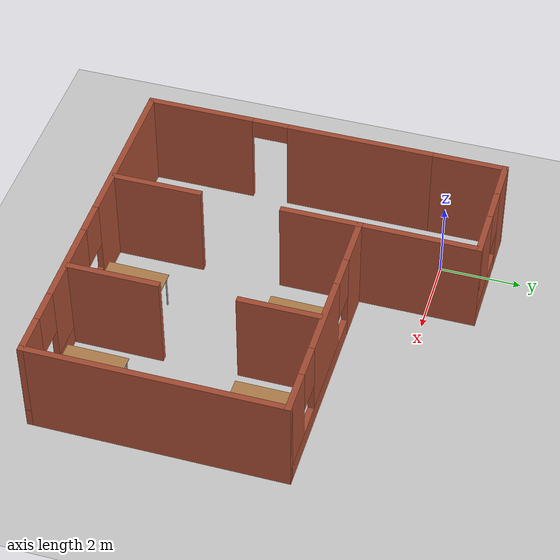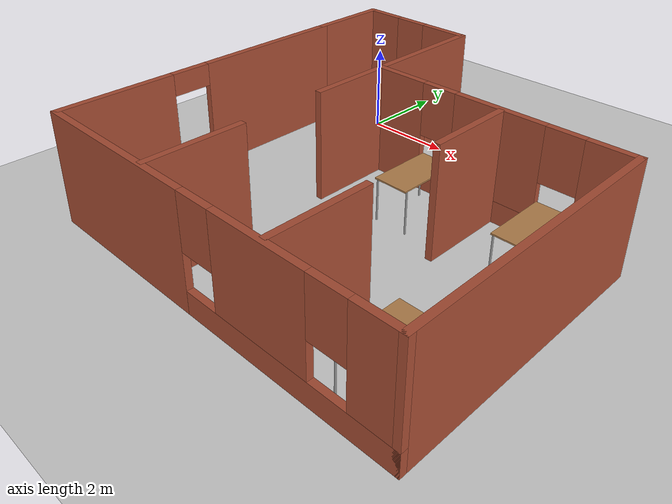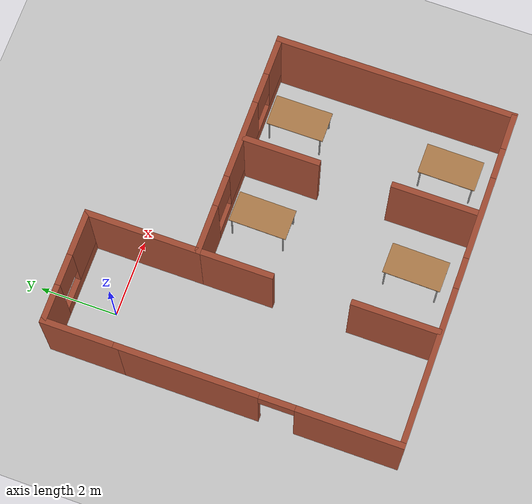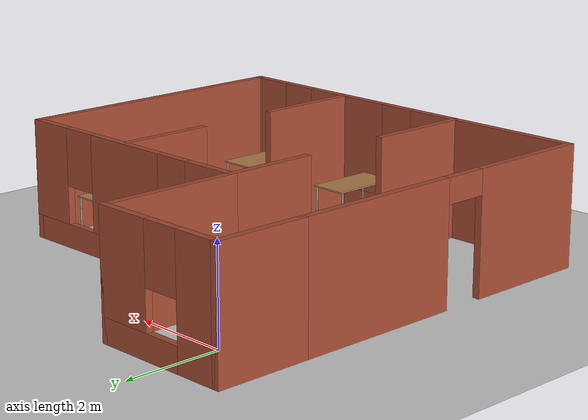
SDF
<sdf version="1.7">
 <world name="default">
  <light name="sun" type="directional">
   <pose>0 0 10 0 -0 0</pose>
   <diffuse>0.8 0.8 0.8 1</diffuse>
   <specular>0.2 0.2 0.2 1</specular>
   <attenuation>
    <range>1000</range>
    <constant>0.9</constant>
    <linear>0.01</linear>
    <quadratic>0.001</quadratic>
   </attenuation>
   <direction>-0.5 0.1 -0.9</direction>
   <spot><inner_angle>0</inner_angle><outer_angle>0</outer_angle><falloff>0</falloff></spot>
  </light>
  <model name="ground_plane">
   <static>1</static>
   <link name="link">
    <collision name="collision">
     <geometry><plane><normal>0 0 1</normal><size>100 100</size></plane></geometry>
     <surface>
      <contact><collide_bitmask>65535</collide_bitmask></contact>
      <friction><ode><mu>100</mu><mu2>50</mu2></ode></friction>
     </surface>
    </collision>
    <visual name="visual">
     <cast_shadows>0</cast_shadows>
     <geometry><plane><normal>0 0 1</normal><size>100 100</size></plane></geometry>
     <material>
      <script><uri>file://media/materials/scripts/gazebo.material</uri><name>Gazebo/Grey</name></script>
     </material>
    </visual>
   </link>
  </model>
  <gravity>0 0 -9.8</gravity>
  <magnetic_field>6e-06 2.3e-05 -4.2e-05</magnetic_field>
  <atmosphere type="adiabatic"/>
  <physics type="ode">
   <max_step_size>0.001</max_step_size>
   <real_time_factor>1</real_time_factor>
   <real_time_update_rate>1000</real_time_update_rate>
  </physics>
  <scene><ambient>0.4 0.4 0.4 1</ambient><background>0.7 0.7 0.7 1</background><shadows>1</shadows></scene>
  <spherical_coordinates>
   <surface_model>EARTH_WGS84</surface_model>
   <latitude_deg>0</latitude_deg>
   <longitude_deg>0</longitude_deg>
   <elevation>0</elevation>
   <heading_deg>0</heading_deg>
  </spherical_coordinates>
  <model name="Restaurant">
   <pose>3.05077 -3.33118 0 0 -0 0</pose>
   <link name="Wall_1">
    <collision name="Wall_1_Collision">
     <geometry><box><size>2 0.15 2.5</size></box></geometry>
     <pose>0 0 1.25 0 -0 0</pose>
    </collision>
    <visual name="Wall_1_Visual">
     <pose>0 0 1.25 0 -0 0</pose>
     <geometry><box><size>2 0.15 2.5</size></box></geometry>
     <material>
      <script><uri>file://media/materials/scripts/gazebo.material</uri><name>Gazebo/Bricks</name></script>
      <ambient>1 1 1 1</ambient>
     </material>
     <meta><layer>0</layer></meta>
    </visual>
    <pose>-4.35 3.55 0 0 -0 1.5708</pose>
   </link>
   <link name="Wall_11">
    <collision name="Wall_11_Collision">
     <geometry><box><size>2 0.15 2.5</size></box></geometry>
     <pose>0 0 1.25 0 -0 0</pose>
    </collision>
    <visual name="Wall_11_Visual">
     <pose>0 0 1.25 0 -0 0</pose>
     <geometry><box><size>2 0.15 2.5</size></box></geometry>
     <material>
      <script><uri>file://media/materials/scripts/gazebo.material</uri><name>Gazebo/Bricks</name></script>
      <ambient>1 1 1 1</ambient>
     </material>
     <meta><layer>0</layer></meta>
    </visual>
    <pose>-1.5 0.7 0 0 -0 -1.5708</pose>
   </link>
   <link name="Wall_13">
    <collision name="Wall_13_Collision">
     <geometry><box><size>2 0.15 2.5</size></box></geometry>
     <pose>0 0 1.25 0 -0 0</pose>
    </collision>
    <visual name="Wall_13_Visual">
     <pose>0 0 1.25 0 -0 0</pose>
     <geometry><box><size>2 0.15 2.5</size></box></geometry>
     <material>
      <script><uri>file://media/materials/scripts/gazebo.material</uri><name>Gazebo/Bricks</name></script>
      <ambient>1 1 1 1</ambient>
     </material>
     <meta><layer>0</layer></meta>
    </visual>
    <pose>1.58788 0.599548 0 0 -0 -1.5708</pose>
   </link>
   <link name="Wall_15">
    <collision name="Wall_15_Collision">
     <geometry><box><size>2.25 0.15 2.5</size></box></geometry>
     <pose>0 0 1.25 0 -0 0</pose>
    </collision>
    <visual name="Wall_15_Visual">
     <pose>0 0 1.25 0 -0 0</pose>
     <geometry><box><size>2.25 0.15 2.5</size></box></geometry>
     <material>
      <script><uri>file://media/materials/scripts/gazebo.material</uri><name>Gazebo/Bricks</name></script>
      <ambient>1 1 1 1</ambient>
     </material>
     <meta><layer>0</layer></meta>
    </visual>
    <pose>-1.47267 -3.35994 0 0 -0 -1.5708</pose>
   </link>
   <link name="Wall_17">
    <collision name="Wall_17_Collision">
     <geometry><box><size>2.25 0.15 2.5</size></box></geometry>
     <pose>0 0 1.25 0 -0 0</pose>
    </collision>
    <visual name="Wall_17_Visual">
     <pose>0 0 1.25 0 -0 0</pose>
     <geometry><box><size>2.25 0.15 2.5</size></box></geometry>
     <material>
      <script><uri>file://media/materials/scripts/gazebo.material</uri><name>Gazebo/Bricks</name></script>
      <ambient>1 1 1 1</ambient>
     </material>
     <meta><layer>0</layer></meta>
    </visual>
    <pose>1.65824 -3.32476 0 0 -0 -1.5708</pose>
   </link>
   <link name="Wall_2">
    <pose>-2.925 4.475 0 0 -0 0</pose>
    <visual name="Wall_2_Visual_0">
     <pose>-0.997768 0 1.25 0 -0 0</pose>
     <geometry><box><size>1.00446 0.15 2.5</size></box></geometry>
     <material>
      <script><uri>file://media/materials/scripts/gazebo.material</uri><name>Gazebo/Bricks</name></script>
      <ambient>1 1 1 1</ambient>
     </material>
     <meta><layer>0</layer></meta>
    </visual>
    <collision name="Wall_2_Collision_0">
     <geometry><box><size>1.00446 0.15 2.5</size></box></geometry>
     <pose>-0.997768 0 1.25 0 -0 0</pose>
    </collision>
    <visual name="Wall_2_Visual_1">
     <pose>0.502232 0 0.25 0 -0 0</pose>
     <geometry><box><size>1.99554 0.15 0.5</size></box></geometry>
     <material>
      <script><uri>file://media/materials/scripts/gazebo.material</uri><name>Gazebo/Bricks</name></script>
      <ambient>1 1 1 1</ambient>
     </material>
     <meta><layer>0</layer></meta>
    </visual>
    <collision name="Wall_2_Collision_1">
     <geometry><box><size>1.99554 0.15 0.5</size></box></geometry>
     <pose>0.502232 0 0.25 0 -0 0</pose>
    </collision>
    <visual name="Wall_2_Visual_2">
     <pose>0.902232 0 1.5 0 -0 0</pose>
     <geometry><box><size>1.19554 0.15 2</size></box></geometry>
     <material>
      <script><uri>file://media/materials/scripts/gazebo.material</uri><name>Gazebo/Bricks</name></script>
      <ambient>1 1 1 1</ambient>
     </material>
     <meta><layer>0</layer></meta>
    </visual>
    <collision name="Wall_2_Collision_2">
     <geometry><box><size>1.19554 0.15 2</size></box></geometry>
     <pose>0.902232 0 1.5 0 -0 0</pose>
    </collision>
    <visual name="Wall_2_Visual_3">
     <pose>-0.095535 0 1.9 0 -0 0</pose>
     <geometry><box><size>0.8 0.15 1.2</size></box></geometry>
     <material>
      <script><uri>file://media/materials/scripts/gazebo.material</uri><name>Gazebo/Bricks</name></script>
      <ambient>1 1 1 1</ambient>
     </material>
     <meta><layer>0</layer></meta>
    </visual>
    <collision name="Wall_2_Collision_3">
     <geometry><box><size>0.8 0.15 1.2</size></box></geometry>
     <pose>-0.095535 0 1.9 0 -0 0</pose>
    </collision>
   </link>
   <link name="Wall_3">
    <collision name="Wall_3_Collision">
     <geometry><box><size>3 0.15 2.5</size></box></geometry>
     <pose>0 0 1.25 0 -0 0</pose>
    </collision>
    <visual name="Wall_3_Visual">
     <pose>0 0 1.25 0 -0 0</pose>
     <geometry><box><size>3 0.15 2.5</size></box></geometry>
     <material>
      <script><uri>file://media/materials/scripts/gazebo.material</uri><name>Gazebo/Bricks</name></script>
      <ambient>1 1 1 1</ambient>
     </material>
     <meta><layer>0</layer></meta>
    </visual>
    <pose>-1.5 3.05 0 0 -0 -1.5708</pose>
   </link>
   <link name="Wall_4">
    <pose>1.425 1.625 0 0 -0 0</pose>
    <visual name="Wall_4_Visual_0">
     <pose>-2.35731 0 1.25 0 -0 0</pose>
     <geometry><box><size>1.28537 0.15 2.5</size></box></geometry>
     <material>
      <script><uri>file://media/materials/scripts/gazebo.material</uri><name>Gazebo/Bricks</name></script>
      <ambient>1 1 1 1</ambient>
     </material>
     <meta><layer>0</layer></meta>
    </visual>
    <collision name="Wall_4_Collision_0">
     <geometry><box><size>1.28537 0.15 2.5</size></box></geometry>
     <pose>-2.35731 0 1.25 0 -0 0</pose>
    </collision>
    <visual name="Wall_4_Visual_1">
     <pose>0.642687 0 0.25 0 -0 0</pose>
     <geometry><box><size>4.71462 0.15 0.5</size></box></geometry>
     <material>
      <script><uri>file://media/materials/scripts/gazebo.material</uri><name>Gazebo/Bricks</name></script>
      <ambient>1 1 1 1</ambient>
     </material>
     <meta><layer>0</layer></meta>
    </visual>
    <collision name="Wall_4_Collision_1">
     <geometry><box><size>4.71462 0.15 0.5</size></box></geometry>
     <pose>0.642687 0 0.25 0 -0 0</pose>
    </collision>
    <visual name="Wall_4_Visual_2">
     <pose>0.110115 0 1.5 0 -0 0</pose>
     <geometry><box><size>2.04948 0.15 2</size></box></geometry>
     <material>
      <script><uri>file://media/materials/scripts/gazebo.material</uri><name>Gazebo/Bricks</name></script>
      <ambient>1 1 1 1</ambient>
     </material>
     <meta><layer>0</layer></meta>
    </visual>
    <collision name="Wall_4_Collision_2">
     <geometry><box><size>2.04948 0.15 2</size></box></geometry>
     <pose>0.110115 0 1.5 0 -0 0</pose>
    </collision>
    <visual name="Wall_4_Visual_3">
     <pose>2.46743 0 1.5 0 -0 0</pose>
     <geometry><box><size>1.06515 0.15 2</size></box></geometry>
     <material>
      <script><uri>file://media/materials/scripts/gazebo.material</uri><name>Gazebo/Bricks</name></script>
      <ambient>1 1 1 1</ambient>
     </material>
     <meta><layer>0</layer></meta>
    </visual>
    <collision name="Wall_4_Collision_3">
     <geometry><box><size>1.06515 0.15 2</size></box></geometry>
     <pose>2.46743 0 1.5 0 -0 0</pose>
    </collision>
    <visual name="Wall_4_Visual_4">
     <pose>-1.31462 0 1.9 0 -0 0</pose>
     <geometry><box><size>0.8 0.15 1.2</size></box></geometry>
     <material>
      <script><uri>file://media/materials/scripts/gazebo.material</uri><name>Gazebo/Bricks</name></script>
      <ambient>1 1 1 1</ambient>
     </material>
     <meta><layer>0</layer></meta>
    </visual>
    <collision name="Wall_4_Collision_4">
     <geometry><box><size>0.8 0.15 1.2</size></box></geometry>
     <pose>-1.31462 0 1.9 0 -0 0</pose>
    </collision>
    <visual name="Wall_4_Visual_5">
     <pose>1.53486 0 1.9 0 -0 0</pose>
     <geometry><box><size>0.8 0.15 1.2</size></box></geometry>
     <material>
      <script><uri>file://media/materials/scripts/gazebo.material</uri><name>Gazebo/Bricks</name></script>
      <ambient>1 1 1 1</ambient>
     </material>
     <meta><layer>0</layer></meta>
    </visual>
    <collision name="Wall_4_Collision_5">
     <geometry><box><size>0.8 0.15 1.2</size></box></geometry>
     <pose>1.53486 0 1.9 0 -0 0</pose>
    </collision>
   </link>
   <link name="Wall_5">
    <collision name="Wall_5_Collision">
     <geometry><box><size>6.25 0.15 2.5</size></box></geometry>
     <pose>0 0 1.25 0 -0 0</pose>
    </collision>
    <visual name="Wall_5_Visual">
     <pose>0 0 1.25 0 -0 0</pose>
     <geometry><box><size>6.25 0.15 2.5</size></box></geometry>
     <material>
      <script><uri>file://media/materials/scripts/gazebo.material</uri><name>Gazebo/Bricks</name></script>
      <ambient>1 1 1 1</ambient>
     </material>
     <meta><layer>0</layer></meta>
    </visual>
    <pose>4.35 -1.425 0 0 -0 -1.5708</pose>
   </link>
   <link name="Wall_8">
    <pose>-4.35 -0.925 0 0 -0 -1.5708</pose>
    <visual name="Wall_8_Visual_0">
     <pose>-1.80235 0 1.25 0 -0 0</pose>
     <geometry><box><size>3.64529 0.15 2.5</size></box></geometry>
     <material>
      <script><uri>file://media/materials/scripts/gazebo.material</uri><name>Gazebo/Bricks</name></script>
      <ambient>1 1 1 1</ambient>
     </material>
     <meta><layer>0</layer></meta>
    </visual>
    <collision name="Wall_8_Collision_0">
     <geometry><box><size>3.64529 0.15 2.5</size></box></geometry>
     <pose>-1.80235 0 1.25 0 -0 0</pose>
    </collision>
    <visual name="Wall_8_Visual_1">
     <pose>2.27264 0 1.25 0 -0 0</pose>
     <geometry><box><size>2.70471 0.15 2.5</size></box></geometry>
     <material>
      <script><uri>file://media/materials/scripts/gazebo.material</uri><name>Gazebo/Bricks</name></script>
      <ambient>1 1 1 1</ambient>
     </material>
     <meta><layer>0</layer></meta>
    </visual>
    <collision name="Wall_8_Collision_1">
     <geometry><box><size>2.70471 0.15 2.5</size></box></geometry>
     <pose>2.27264 0 1.25 0 -0 0</pose>
    </collision>
    <visual name="Wall_8_Visual_2">
     <pose>0.470289 0 2.25 0 -0 0</pose>
     <geometry><box><size>0.9 0.15 0.5</size></box></geometry>
     <material>
      <script><uri>file://media/materials/scripts/gazebo.material</uri><name>Gazebo/Bricks</name></script>
      <ambient>1 1 1 1</ambient>
     </material>
     <meta><layer>0</layer></meta>
    </visual>
    <collision name="Wall_8_Collision_2">
     <geometry><box><size>0.9 0.15 0.5</size></box></geometry>
     <pose>0.470289 0 2.25 0 -0 0</pose>
    </collision>
   </link>
   <link name="Wall_9">
    <pose>0 -4.475 0 0 -0 0</pose>
    <visual name="Wall_9_Visual_0">
     <pose>-2.3749 0 1.25 0 -0 0</pose>
     <geometry><box><size>4.1002 0.15 2.5</size></box></geometry>
     <material>
      <script><uri>file://media/materials/scripts/gazebo.material</uri><name>Gazebo/Bricks</name></script>
      <ambient>1 1 1 1</ambient>
     </material>
     <meta><layer>0</layer></meta>
    </visual>
    <collision name="Wall_9_Collision_0">
     <geometry><box><size>4.1002 0.15 2.5</size></box></geometry>
     <pose>-2.3749 0 1.25 0 -0 0</pose>
    </collision>
    <visual name="Wall_9_Visual_1">
     <pose>2.0501 0 0.25 0 -0 0</pose>
     <geometry><box><size>4.7498 0.15 0.5</size></box></geometry>
     <material>
      <script><uri>file://media/materials/scripts/gazebo.material</uri><name>Gazebo/Bricks</name></script>
      <ambient>1 1 1 1</ambient>
     </material>
     <meta><layer>0</layer></meta>
    </visual>
    <collision name="Wall_9_Collision_1">
     <geometry><box><size>4.7498 0.15 0.5</size></box></geometry>
     <pose>2.0501 0 0.25 0 -0 0</pose>
    </collision>
    <visual name="Wall_9_Visual_2">
     <pose>1.5527 0 1.5 0 -0 0</pose>
     <geometry><box><size>2.15502 0.15 2</size></box></geometry>
     <material>
      <script><uri>file://media/materials/scripts/gazebo.material</uri><name>Gazebo/Bricks</name></script>
      <ambient>1 1 1 1</ambient>
     </material>
     <meta><layer>0</layer></meta>
    </visual>
    <collision name="Wall_9_Collision_2">
     <geometry><box><size>2.15502 0.15 2</size></box></geometry>
     <pose>1.5527 0 1.5 0 -0 0</pose>
    </collision>
    <visual name="Wall_9_Visual_3">
     <pose>3.92761 0 1.5 0 -0 0</pose>
     <geometry><box><size>0.994788 0.15 2</size></box></geometry>
     <material>
      <script><uri>file://media/materials/scripts/gazebo.material</uri><name>Gazebo/Bricks</name></script>
      <ambient>1 1 1 1</ambient>
     </material>
     <meta><layer>0</layer></meta>
    </visual>
    <collision name="Wall_9_Collision_3">
     <geometry><box><size>0.994788 0.15 2</size></box></geometry>
     <pose>3.92761 0 1.5 0 -0 0</pose>
    </collision>
    <visual name="Wall_9_Visual_4">
     <pose>0.075196 0 1.9 0 -0 0</pose>
     <geometry><box><size>0.8 0.15 1.2</size></box></geometry>
     <material>
      <script><uri>file://media/materials/scripts/gazebo.material</uri><name>Gazebo/Bricks</name></script>
      <ambient>1 1 1 1</ambient>
     </material>
     <meta><layer>0</layer></meta>
    </visual>
    <collision name="Wall_9_Collision_4">
     <geometry><box><size>0.8 0.15 1.2</size></box></geometry>
     <pose>0.075196 0 1.9 0 -0 0</pose>
    </collision>
    <visual name="Wall_9_Visual_5">
     <pose>3.03021 0 1.9 0 -0 0</pose>
     <geometry><box><size>0.8 0.15 1.2</size></box></geometry>
     <material>
      <script><uri>file://media/materials/scripts/gazebo.material</uri><name>Gazebo/Bricks</name></script>
      <ambient>1 1 1 1</ambient>
     </material>
     <meta><layer>0</layer></meta>
    </visual>
    <collision name="Wall_9_Collision_5">
     <geometry><box><size>0.8 0.15 1.2</size></box></geometry>
     <pose>3.03021 0 1.9 0 -0 0</pose>
    </collision>
   </link>
   <static>1</static>
  </model>
  <model name="Restaurant_tables">
   <model name="table">
    <static>1</static>
    <link name="link">
     <collision name="surface">
      <pose>0 0 1 0 -0 0</pose>
      <geometry><box><size>1.5 0.8 0.03</size></box></geometry>
      <surface><friction><ode><mu>0.6</mu><mu2>0.6</mu2></ode></friction></surface>
     </collision>
     <visual name="visual1">
      <pose>0 0 1 0 -0 0</pose>
      <geometry><box><size>1.5 0.8 0.03</size></box></geometry>
      <material>
       <script><uri>file://media/materials/scripts/gazebo.material</uri><name>Gazebo/Wood</name></script>
      </material>
     </visual>
     <collision name="front_left_leg">
      <pose>0.68 0.38 0.5 0 -0 0</pose>
      <geometry><cylinder><radius>0.02</radius><length>1</length></cylinder></geometry>
     </collision>
     <visual name="front_left_leg">
      <pose>0.68 0.38 0.5 0 -0 0</pose>
      <geometry><cylinder><radius>0.02</radius><length>1</length></cylinder></geometry>
      <material>
       <script><uri>file://media/materials/scripts/gazebo.material</uri><name>Gazebo/Grey</name></script>
      </material>
     </visual>
     <collision name="front_right_leg">
      <pose>0.68 -0.38 0.5 0 -0 0</pose>
      <geometry><cylinder><radius>0.02</radius><length>1</length></cylinder></geometry>
     </collision>
     <visual name="front_right_leg">
      <pose>0.68 -0.38 0.5 0 -0 0</pose>
      <geometry><cylinder><radius>0.02</radius><length>1</length></cylinder></geometry>
      <material>
       <script><uri>file://media/materials/scripts/gazebo.material</uri><name>Gazebo/Grey</name></script>
      </material>
     </visual>
     <collision name="back_right_leg">
      <pose>-0.68 -0.38 0.5 0 -0 0</pose>
      <geometry><cylinder><radius>0.02</radius><length>1</length></cylinder></geometry>
     </collision>
     <visual name="back_right_leg">
      <pose>-0.68 -0.38 0.5 0 -0 0</pose>
      <geometry><cylinder><radius>0.02</radius><length>1</length></cylinder></geometry>
      <material>
       <script><uri>file://media/materials/scripts/gazebo.material</uri><name>Gazebo/Grey</name></script>
      </material>
     </visual>
     <collision name="back_left_leg">
      <pose>-0.68 0.38 0.5 0 -0 0</pose>
      <geometry><cylinder><radius>0.02</radius><length>1</length></cylinder></geometry>
     </collision>
     <visual name="back_left_leg">
      <pose>-0.68 0.38 0.5 0 -0 0</pose>
      <geometry><cylinder><radius>0.02</radius><length>1</length></cylinder></geometry>
      <material>
       <script><uri>file://media/materials/scripts/gazebo.material</uri><name>Gazebo/Grey</name></script>
      </material>
     </visual>
    </link>
    <pose>-1.38875 2.01479 0 0 0 -1.58194</pose>
   </model>
   <model name="table_0">
    <static>1</static>
    <link name="link">
     <collision name="surface">
      <pose>0 0 1 0 -0 0</pose>
      <geometry><box><size>1.5 0.8 0.03</size></box></geometry>
      <surface><friction><ode><mu>0.6</mu><mu2>0.6</mu2></ode></friction></surface>
     </collision>
     <visual name="visual1">
      <pose>0 0 1 0 -0 0</pose>
      <geometry><box><size>1.5 0.8 0.03</size></box></geometry>
      <material>
       <script><uri>file://media/materials/scripts/gazebo.material</uri><name>Gazebo/Wood</name></script>
      </material>
     </visual>
     <collision name="front_left_leg">
      <pose>0.68 0.38 0.5 0 -0 0</pose>
      <geometry><cylinder><radius>0.02</radius><length>1</length></cylinder></geometry>
     </collision>
     <visual name="front_left_leg">
      <pose>0.68 0.38 0.5 0 -0 0</pose>
      <geometry><cylinder><radius>0.02</radius><length>1</length></cylinder></geometry>
      <material>
       <script><uri>file://media/materials/scripts/gazebo.material</uri><name>Gazebo/Grey</name></script>
      </material>
     </visual>
     <collision name="front_right_leg">
      <pose>0.68 -0.38 0.5 0 -0 0</pose>
      <geometry><cylinder><radius>0.02</radius><length>1</length></cylinder></geometry>
     </collision>
     <visual name="front_right_leg">
      <pose>0.68 -0.38 0.5 0 -0 0</pose>
      <geometry><cylinder><radius>0.02</radius><length>1</length></cylinder></geometry>
      <material>
       <script><uri>file://media/materials/scripts/gazebo.material</uri><name>Gazebo/Grey</name></script>
      </material>
     </visual>
     <collision name="back_right_leg">
      <pose>-0.68 -0.38 0.5 0 -0 0</pose>
      <geometry><cylinder><radius>0.02</radius><length>1</length></cylinder></geometry>
     </collision>
     <visual name="back_right_leg">
      <pose>-0.68 -0.38 0.5 0 -0 0</pose>
      <geometry><cylinder><radius>0.02</radius><length>1</length></cylinder></geometry>
      <material>
       <script><uri>file://media/materials/scripts/gazebo.material</uri><name>Gazebo/Grey</name></script>
      </material>
     </visual>
     <collision name="back_left_leg">
      <pose>-0.68 0.38 0.5 0 -0 0</pose>
      <geometry><cylinder><radius>0.02</radius><length>1</length></cylinder></geometry>
     </collision>
     <visual name="back_left_leg">
      <pose>-0.68 0.38 0.5 0 -0 0</pose>
      <geometry><cylinder><radius>0.02</radius><length>1</length></cylinder></geometry>
      <material>
       <script><uri>file://media/materials/scripts/gazebo.material</uri><name>Gazebo/Grey</name></script>
      </material>
     </visual>
    </link>
    <pose>-1.38891 -2.01238 0 0 0 -1.58604</pose>
   </model>
   <model name="table_1">
    <static>1</static>
    <link name="link">
     <collision name="surface">
      <pose>0 0 1 0 -0 0</pose>
      <geometry><box><size>1.5 0.8 0.03</size></box></geometry>
      <surface><friction><ode><mu>0.6</mu><mu2>0.6</mu2></ode></friction></surface>
     </collision>
     <visual name="visual1">
      <pose>0 0 1 0 -0 0</pose>
      <geometry><box><size>1.5 0.8 0.03</size></box></geometry>
      <material>
       <script><uri>file://media/materials/scripts/gazebo.material</uri><name>Gazebo/Wood</name></script>
      </material>
     </visual>
     <collision name="front_left_leg">
      <pose>0.68 0.38 0.5 0 -0 0</pose>
      <geometry><cylinder><radius>0.02</radius><length>1</length></cylinder></geometry>
     </collision>
     <visual name="front_left_leg">
      <pose>0.68 0.38 0.5 0 -0 0</pose>
      <geometry><cylinder><radius>0.02</radius><length>1</length></cylinder></geometry>
      <material>
       <script><uri>file://media/materials/scripts/gazebo.material</uri><name>Gazebo/Grey</name></script>
      </material>
     </visual>
     <collision name="front_right_leg">
      <pose>0.68 -0.38 0.5 0 -0 0</pose>
      <geometry><cylinder><radius>0.02</radius><length>1</length></cylinder></geometry>
     </collision>
     <visual name="front_right_leg">
      <pose>0.68 -0.38 0.5 0 -0 0</pose>
      <geometry><cylinder><radius>0.02</radius><length>1</length></cylinder></geometry>
      <material>
       <script><uri>file://media/materials/scripts/gazebo.material</uri><name>Gazebo/Grey</name></script>
      </material>
     </visual>
     <collision name="back_right_leg">
      <pose>-0.68 -0.38 0.5 0 -0 0</pose>
      <geometry><cylinder><radius>0.02</radius><length>1</length></cylinder></geometry>
     </collision>
     <visual name="back_right_leg">
      <pose>-0.68 -0.38 0.5 0 -0 0</pose>
      <geometry><cylinder><radius>0.02</radius><length>1</length></cylinder></geometry>
      <material>
       <script><uri>file://media/materials/scripts/gazebo.material</uri><name>Gazebo/Grey</name></script>
      </material>
     </visual>
     <collision name="back_left_leg">
      <pose>-0.68 0.38 0.5 0 -0 0</pose>
      <geometry><cylinder><radius>0.02</radius><length>1</length></cylinder></geometry>
     </collision>
     <visual name="back_left_leg">
      <pose>-0.68 0.38 0.5 0 -0 0</pose>
      <geometry><cylinder><radius>0.02</radius><length>1</length></cylinder></geometry>
      <material>
       <script><uri>file://media/materials/scripts/gazebo.material</uri><name>Gazebo/Grey</name></script>
      </material>
     </visual>
    </link>
    <pose>1.37347 2.00871 0 0 0 -1.57046</pose>
   </model>
   <model name="table_2">
    <static>1</static>
    <link name="link">
     <collision name="surface">
      <pose>0 0 1 0 -0 0</pose>
      <geometry><box><size>1.5 0.8 0.03</size></box></geometry>
      <surface><friction><ode><mu>0.6</mu><mu2>0.6</mu2></ode></friction></surface>
     </collision>
     <visual name="visual1">
      <pose>0 0 1 0 -0 0</pose>
      <geometry><box><size>1.5 0.8 0.03</size></box></geometry>
      <material>
       <script><uri>file://media/materials/scripts/gazebo.material</uri><name>Gazebo/Wood</name></script>
      </material>
     </visual>
     <collision name="front_left_leg">
      <pose>0.68 0.38 0.5 0 -0 0</pose>
      <geometry><cylinder><radius>0.02</radius><length>1</length></cylinder></geometry>
     </collision>
     <visual name="front_left_leg">
      <pose>0.68 0.38 0.5 0 -0 0</pose>
      <geometry><cylinder><radius>0.02</radius><length>1</length></cylinder></geometry>
      <material>
       <script><uri>file://media/materials/scripts/gazebo.material</uri><name>Gazebo/Grey</name></script>
      </material>
     </visual>
     <collision name="front_right_leg">
      <pose>0.68 -0.38 0.5 0 -0 0</pose>
      <geometry><cylinder><radius>0.02</radius><length>1</length></cylinder></geometry>
     </collision>
     <visual name="front_right_leg">
      <pose>0.68 -0.38 0.5 0 -0 0</pose>
      <geometry><cylinder><radius>0.02</radius><length>1</length></cylinder></geometry>
      <material>
       <script><uri>file://media/materials/scripts/gazebo.material</uri><name>Gazebo/Grey</name></script>
      </material>
     </visual>
     <collision name="back_right_leg">
      <pose>-0.68 -0.38 0.5 0 -0 0</pose>
      <geometry><cylinder><radius>0.02</radius><length>1</length></cylinder></geometry>
     </collision>
     <visual name="back_right_leg">
      <pose>-0.68 -0.38 0.5 0 -0 0</pose>
      <geometry><cylinder><radius>0.02</radius><length>1</length></cylinder></geometry>
      <material>
       <script><uri>file://media/materials/scripts/gazebo.material</uri><name>Gazebo/Grey</name></script>
      </material>
     </visual>
     <collision name="back_left_leg">
      <pose>-0.68 0.38 0.5 0 -0 0</pose>
      <geometry><cylinder><radius>0.02</radius><length>1</length></cylinder></geometry>
     </collision>
     <visual name="back_left_leg">
      <pose>-0.68 0.38 0.5 0 -0 0</pose>
      <geometry><cylinder><radius>0.02</radius><length>1</length></cylinder></geometry>
      <material>
       <script><uri>file://media/materials/scripts/gazebo.material</uri><name>Gazebo/Grey</name></script>
      </material>
     </visual>
    </link>
    <pose>1.40417 -2.01113 0 0 0 -1.57957</pose>
   </model>
   <static>0</static>
   <pose>4.77048 -4.70657 0 0 -0 0</pose>
  </model>
 </world>
</sdf>
